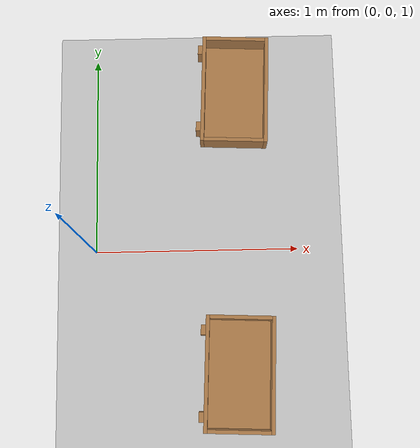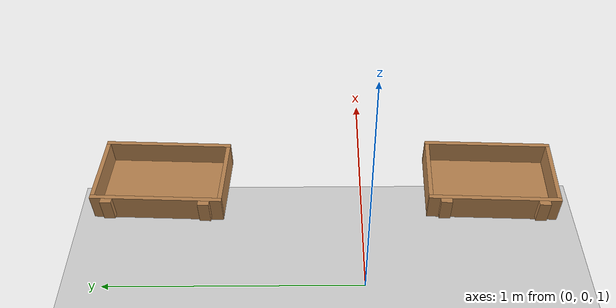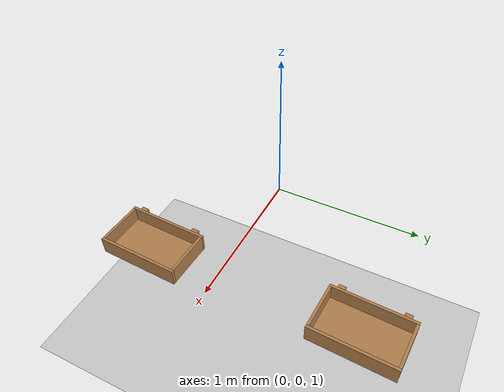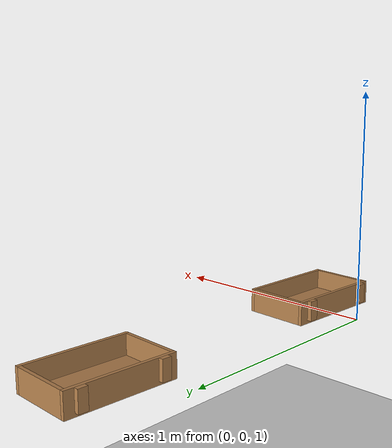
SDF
<sdf version="1.6">
 <world name="vnbots_world">
  <gravity>0 0 -9.81</gravity>
  <physics name="default_physics" default="0" type="ode">
   <max_step_size>0.001</max_step_size>
   <real_time_factor>1</real_time_factor>
   <real_time_update_rate>1000</real_time_update_rate>
  </physics>
  <include><uri>model://sun</uri></include>
  <include><uri>model://ground_plane</uri></include>
  <model name="case1">
   <static>true</static>
   <include><uri>model://VNBot_case</uri><pose>0.51 0.9 0.822 0 4.712 3.1</pose></include>
  </model>
  <model name="case2">
   <static>true</static>
   <include><uri>model://VNBot_case</uri><pose>0.5 -0.6 0.822 0 4.712 3.1</pose></include>
  </model>
 </world>
</sdf>

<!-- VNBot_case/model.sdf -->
<sdf version='1.7'>
  <model name='VNBot_case'>
    <link name='base'>
      <pose>0 -0 0.024 0 -0 0</pose>
      <inertial>
        <pose>-0.022184 0 0.171592 0 -0 0</pose>
        <mass>3.96264</mass>
        <inertia>
          <ixx>0.213536</ixx>
          <ixy>0</ixy>
          <ixz>0.000779377</ixz>
          <iyy>0.0708943</iyy>
          <iyz>0</iyz>
          <izz>0.154604</izz>
        </inertia>
      </inertial>
      <self_collide>0</self_collide>
      <enable_wind>0</enable_wind>
      <kinematic>0</kinematic>
      <visual name='visual_back'>
        <pose>-0.053975 0 0.1778 0 -0 0</pose>
        <geometry>
          <box>
            <size>0.01905 0.5461 0.3175</size>
          </box>
        </geometry>
        <material>
          <script>
            <uri>file://media/materials/scripts/gazebo.material</uri>
            <name>Gazebo/Wood</name>
          </script>
          <shader type='pixel'/>
        </material>
        <transparency>0</transparency>
        <cast_shadows>1</cast_shadows>
      </visual>
      <visual name='visual_bottom'>
        <pose>0 0 0.009525 0 -0 0</pose>
        <geometry>
          <box>
            <size>0.127 0.5842 0.01905</size>
          </box>
        </geometry>
        <material>
          <script>
            <uri>file://media/materials/scripts/gazebo.material</uri>
            <name>Gazebo/Wood</name>
          </script>
          <shader type='pixel'/>
        </material>
        <transparency>0</transparency>
        <cast_shadows>1</cast_shadows>
      </visual>
      <visual name='visual_left'>
        <pose>0 -0.282575 0.1778 0 -0 0</pose>
        <geometry>
          <box>
            <size>0.127 0.01905 0.3175</size>
          </box>
        </geometry>
        <material>
          <script>
            <uri>file://media/materials/scripts/gazebo.material</uri>
            <name>Gazebo/Wood</name>
          </script>
          <shader type='pixel'/>
        </material>
        <transparency>0</transparency>
        <cast_shadows>1</cast_shadows>
      </visual>
      <visual name='visual_top'>
        <pose>0 0 0.346075 0 -0 0</pose>
        <geometry>
          <box>
            <size>0.127 0.5842 0.01905</size>
          </box>
        </geometry>
        <material>
          <script>
            <uri>file://media/materials/scripts/gazebo.material</uri>
            <name>Gazebo/Wood</name>
          </script>
          <shader type='pixel'/>
        </material>
        <transparency>0</transparency>
        <cast_shadows>1</cast_shadows>
      </visual>
      <visual name='visual_right'>
        <pose>0 0.282575 0.1778 0 -0 0</pose>
        <geometry>
          <box>
            <size>0.127 0.01905 0.3175</size>
          </box>
        </geometry>
        <material>
          <script>
            <uri>file://media/materials/scripts/gazebo.material</uri>
            <name>Gazebo/Wood</name>
          </script>
          <shader type='pixel'/>
        </material>
        <transparency>0</transparency>
        <cast_shadows>1</cast_shadows>
      </visual>
      <visual name='visual_block_left'>
        <pose>0.0095 -0.2151 -0.012 0 -0 0</pose>
        <geometry>
          <box>
            <size>0.108 0.05 0.024</size>
          </box>
        </geometry>
        <material>
          <script>
            <uri>file://media/materials/scripts/gazebo.material</uri>
            <name>Gazebo/Wood</name>
          </script>
          <shader type='pixel'/>
        </material>
        <transparency>0</transparency>
        <cast_shadows>1</cast_shadows>
      </visual>
      <visual name='visual_block_right'>
        <pose>0.0095 0.2151 -0.012 0 -0 0</pose>
        <geometry>
          <box>
            <size>0.108 0.05 0.024</size>
          </box>
        </geometry>
        <material>
          <script>
            <uri>file://media/materials/scripts/gazebo.material</uri>
            <name>Gazebo/Wood</name>
          </script>
          <shader type='pixel'/>
        </material>
        <transparency>0</transparency>
        <cast_shadows>1</cast_shadows>
      </visual>
      <collision name='collision_back'>
        <laser_retro>0</laser_retro>
        <max_contacts>10</max_contacts>
        <pose>-0.053975 0 0.1778 0 -0 0</pose>
        <geometry>
          <box>
            <size>0.01905 0.5461 0.3175</size>
          </box>
        </geometry>
        <surface>
          <friction>
            <ode>
              <mu>1</mu>
              <mu2>1</mu2>
              <fdir1>0 0 0</fdir1>
              <slip1>0</slip1>
              <slip2>0</slip2>
            </ode>
            <torsional>
              <coefficient>1</coefficient>
              <patch_radius>0</patch_radius>
              <surface_radius>0.01</surface_radius>
              <use_patch_radius>0</use_patch_radius>
              <ode>
                <slip>0</slip>
              </ode>
            </torsional>
          </friction>
          <bounce>
            <restitution_coefficient>0</restitution_coefficient>
            <threshold>1e+06</threshold>
          </bounce>
          <contact>
            <collide_without_contact>0</collide_without_contact>
            <collide_without_contact_bitmask>1</collide_without_contact_bitmask>
            <collide_bitmask>1</collide_bitmask>
            <ode>
              <soft_cfm>0</soft_cfm>
              <soft_erp>0.2</soft_erp>
              <kp>100000</kp>
              <kd>100</kd>
              <max_vel>100</max_vel>
              <min_depth>0.001</min_depth>
            </ode>
            <bullet>
              <split_impulse>1</split_impulse>
              <split_impulse_penetration_threshold>-0.01</split_impulse_penetration_threshold>
              <soft_cfm>0</soft_cfm>
              <soft_erp>0.2</soft_erp>
              <kp>100000</kp>
              <kd>100</kd>
            </bullet>
          </contact>
        </surface>
      </collision>
      <collision name='collision_bottom'>
        <laser_retro>0</laser_retro>
        <max_contacts>10</max_contacts>
        <pose>0 0 0.009525 0 -0 0</pose>
        <geometry>
          <box>
            <size>0.127 0.5842 0.01905</size>
          </box>
        </geometry>
        <surface>
          <friction>
            <ode>
              <mu>1</mu>
              <mu2>1</mu2>
              <fdir1>0 0 0</fdir1>
              <slip1>0</slip1>
              <slip2>0</slip2>
            </ode>
            <torsional>
              <coefficient>1</coefficient>
              <patch_radius>0</patch_radius>
              <surface_radius>0.01</surface_radius>
              <use_patch_radius>0</use_patch_radius>
              <ode>
                <slip>0</slip>
              </ode>
            </torsional>
          </friction>
          <bounce>
            <restitution_coefficient>0</restitution_coefficient>
            <threshold>1e+06</threshold>
          </bounce>
          <contact>
            <collide_without_contact>0</collide_without_contact>
            <collide_without_contact_bitmask>1</collide_without_contact_bitmask>
            <collide_bitmask>1</collide_bitmask>
            <ode>
              <soft_cfm>0</soft_cfm>
              <soft_erp>0.2</soft_erp>
              <kp>100000</kp>
              <kd>100</kd>
              <max_vel>100</max_vel>
              <min_depth>0.001</min_depth>
            </ode>
            <bullet>
              <split_impulse>1</split_impulse>
              <split_impulse_penetration_threshold>-0.01</split_impulse_penetration_threshold>
              <soft_cfm>0</soft_cfm>
              <soft_erp>0.2</soft_erp>
              <kp>100000</kp>
              <kd>100</kd>
            </bullet>
          </contact>
        </surface>
      </collision>
      <collision name='collision_top'>
        <laser_retro>0</laser_retro>
        <max_contacts>10</max_contacts>
        <pose>0 0 0.346075 0 -0 0</pose>
        <geometry>
          <box>
            <size>0.127 0.5842 0.01905</size>
          </box>
        </geometry>
        <surface>
          <friction>
            <ode>
              <mu>1</mu>
              <mu2>1</mu2>
              <fdir1>0 0 0</fdir1>
              <slip1>0</slip1>
              <slip2>0</slip2>
            </ode>
            <torsional>
              <coefficient>1</coefficient>
              <patch_radius>0</patch_radius>
              <surface_radius>0.01</surface_radius>
              <use_patch_radius>0</use_patch_radius>
              <ode>
                <slip>0</slip>
              </ode>
            </torsional>
          </friction>
          <bounce>
            <restitution_coefficient>0</restitution_coefficient>
            <threshold>1e+06</threshold>
          </bounce>
          <contact>
            <collide_without_contact>0</collide_without_contact>
            <collide_without_contact_bitmask>1</collide_without_contact_bitmask>
            <collide_bitmask>1</collide_bitmask>
            <ode>
              <soft_cfm>0</soft_cfm>
              <soft_erp>0.2</soft_erp>
              <kp>100000</kp>
              <kd>100</kd>
              <max_vel>100</max_vel>
              <min_depth>0.001</min_depth>
            </ode>
            <bullet>
              <split_impulse>1</split_impulse>
              <split_impulse_penetration_threshold>-0.01</split_impulse_penetration_threshold>
              <soft_cfm>0</soft_cfm>
              <soft_erp>0.2</soft_erp>
              <kp>100000</kp>
              <kd>100</kd>
            </bullet>
          </contact>
        </surface>
      </collision>
      <collision name='collision_left'>
        <laser_retro>0</laser_retro>
        <max_contacts>10</max_contacts>
        <pose>0 -0.282575 0.1778 0 -0 0</pose>
        <geometry>
          <box>
            <size>0.127 0.01905 0.3175</size>
          </box>
        </geometry>
        <surface>
          <friction>
            <ode>
              <mu>1</mu>
              <mu2>1</mu2>
              <fdir1>0 0 0</fdir1>
              <slip1>0</slip1>
              <slip2>0</slip2>
            </ode>
            <torsional>
              <coefficient>1</coefficient>
              <patch_radius>0</patch_radius>
              <surface_radius>0.01</surface_radius>
              <use_patch_radius>0</use_patch_radius>
              <ode>
                <slip>0</slip>
              </ode>
            </torsional>
          </friction>
          <bounce>
            <restitution_coefficient>0</restitution_coefficient>
            <threshold>1e+06</threshold>
          </bounce>
          <contact>
            <collide_without_contact>0</collide_without_contact>
            <collide_without_contact_bitmask>1</collide_without_contact_bitmask>
            <collide_bitmask>1</collide_bitmask>
            <ode>
              <soft_cfm>0</soft_cfm>
              <soft_erp>0.2</soft_erp>
              <kp>100000</kp>
              <kd>100</kd>
              <max_vel>100</max_vel>
              <min_depth>0.001</min_depth>
            </ode>
            <bullet>
              <split_impulse>1</split_impulse>
              <split_impulse_penetration_threshold>-0.01</split_impulse_penetration_threshold>
              <soft_cfm>0</soft_cfm>
              <soft_erp>0.2</soft_erp>
              <kp>100000</kp>
              <kd>100</kd>
            </bullet>
          </contact>
        </surface>
      </collision>
      <collision name='collision_right'>
        <laser_retro>0</laser_retro>
        <max_contacts>10</max_contacts>
        <pose>0 0.282575 0.1778 0 -0 0</pose>
        <geometry>
          <box>
            <size>0.127 0.01905 0.3175</size>
          </box>
        </geometry>
        <surface>
          <friction>
            <ode>
              <mu>1</mu>
              <mu2>1</mu2>
              <fdir1>0 0 0</fdir1>
              <slip1>0</slip1>
              <slip2>0</slip2>
            </ode>
            <torsional>
              <coefficient>1</coefficient>
              <patch_radius>0</patch_radius>
              <surface_radius>0.01</surface_radius>
              <use_patch_radius>0</use_patch_radius>
              <ode>
                <slip>0</slip>
              </ode>
            </torsional>
          </friction>
          <bounce>
            <restitution_coefficient>0</restitution_coefficient>
            <threshold>1e+06</threshold>
          </bounce>
          <contact>
            <collide_without_contact>0</collide_without_contact>
            <collide_without_contact_bitmask>1</collide_without_contact_bitmask>
            <collide_bitmask>1</collide_bitmask>
            <ode>
              <soft_cfm>0</soft_cfm>
              <soft_erp>0.2</soft_erp>
              <kp>100000</kp>
              <kd>100</kd>
              <max_vel>100</max_vel>
              <min_depth>0.001</min_depth>
            </ode>
            <bullet>
              <split_impulse>1</split_impulse>
              <split_impulse_penetration_threshold>-0.01</split_impulse_penetration_threshold>
              <soft_cfm>0</soft_cfm>
              <soft_erp>0.2</soft_erp>
              <kp>100000</kp>
              <kd>100</kd>
            </bullet>
          </contact>
        </surface>
      </collision>
      <collision name='collision_block_left'>
        <laser_retro>0</laser_retro>
        <max_contacts>10</max_contacts>
        <pose>0.0095 -0.2151 -0.012 0 -0 0</pose>
        <geometry>
          <box>
            <size>0.108 0.05 0.024</size>
          </box>
        </geometry>
        <surface>
          <friction>
            <ode>
              <mu>1</mu>
              <mu2>1</mu2>
              <fdir1>0 0 0</fdir1>
              <slip1>0</slip1>
              <slip2>0</slip2>
            </ode>
            <torsional>
              <coefficient>1</coefficient>
              <patch_radius>0</patch_radius>
              <surface_radius>0.01</surface_radius>
              <use_patch_radius>0</use_patch_radius>
              <ode>
                <slip>0</slip>
              </ode>
            </torsional>
          </friction>
          <bounce>
            <restitution_coefficient>0</restitution_coefficient>
            <threshold>1e+06</threshold>
          </bounce>
          <contact>
            <collide_without_contact>0</collide_without_contact>
            <collide_without_contact_bitmask>1</collide_without_contact_bitmask>
            <collide_bitmask>1</collide_bitmask>
            <ode>
              <soft_cfm>0</soft_cfm>
              <soft_erp>0.2</soft_erp>
              <kp>100000</kp>
              <kd>100</kd>
              <max_vel>100</max_vel>
              <min_depth>0.001</min_depth>
            </ode>
            <bullet>
              <split_impulse>1</split_impulse>
              <split_impulse_penetration_threshold>-0.01</split_impulse_penetration_threshold>
              <soft_cfm>0</soft_cfm>
              <soft_erp>0.2</soft_erp>
              <kp>100000</kp>
              <kd>100</kd>
            </bullet>
          </contact>
        </surface>
      </collision>
      <collision name='collision_block_right'>
        <laser_retro>0</laser_retro>
        <max_contacts>10</max_contacts>
        <pose>0.0095 0.2151 -0.012 0 -0 0</pose>
        <geometry>
          <box>
            <size>0.108 0.05 0.024</size>
          </box>
        </geometry>
        <surface>
          <friction>
            <ode>
              <mu>1</mu>
              <mu2>1</mu2>
              <fdir1>0 0 0</fdir1>
              <slip1>0</slip1>
              <slip2>0</slip2>
            </ode>
            <torsional>
              <coefficient>1</coefficient>
              <patch_radius>0</patch_radius>
              <surface_radius>0.01</surface_radius>
              <use_patch_radius>0</use_patch_radius>
              <ode>
                <slip>0</slip>
              </ode>
            </torsional>
          </friction>
          <bounce>
            <restitution_coefficient>0</restitution_coefficient>
            <threshold>1e+06</threshold>
          </bounce>
          <contact>
            <collide_without_contact>0</collide_without_contact>
            <collide_without_contact_bitmask>1</collide_without_contact_bitmask>
            <collide_bitmask>1</collide_bitmask>
            <ode>
              <soft_cfm>0</soft_cfm>
              <soft_erp>0.2</soft_erp>
              <kp>100000</kp>
              <kd>100</kd>
              <max_vel>100</max_vel>
              <min_depth>0.001</min_depth>
            </ode>
            <bullet>
              <split_impulse>1</split_impulse>
              <split_impulse_penetration_threshold>-0.01</split_impulse_penetration_threshold>
              <soft_cfm>0</soft_cfm>
              <soft_erp>0.2</soft_erp>
              <kp>100000</kp>
              <kd>100</kd>
            </bullet>
          </contact>
        </surface>
      </collision>
    </link>
    <static>0</static>
    <allow_auto_disable>1</allow_auto_disable>
  </model>
</sdf>
